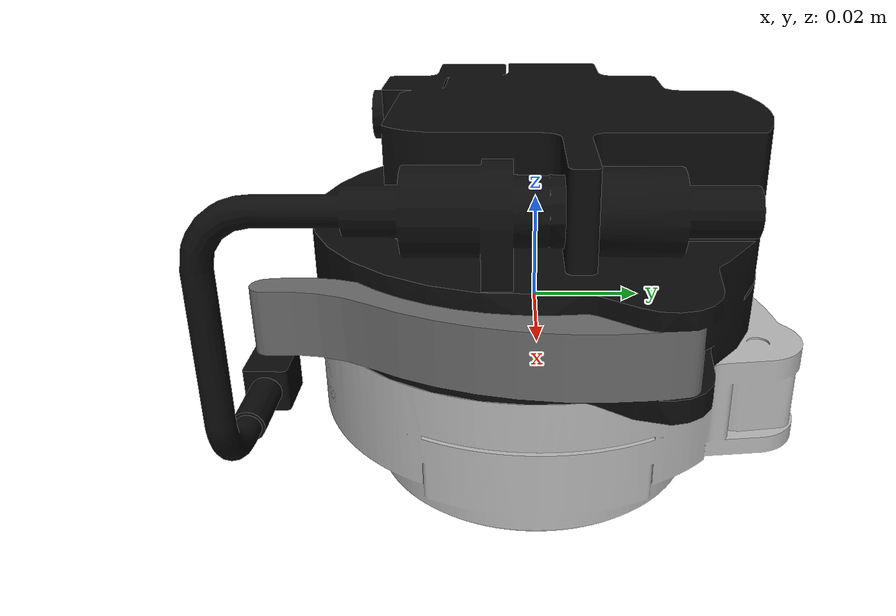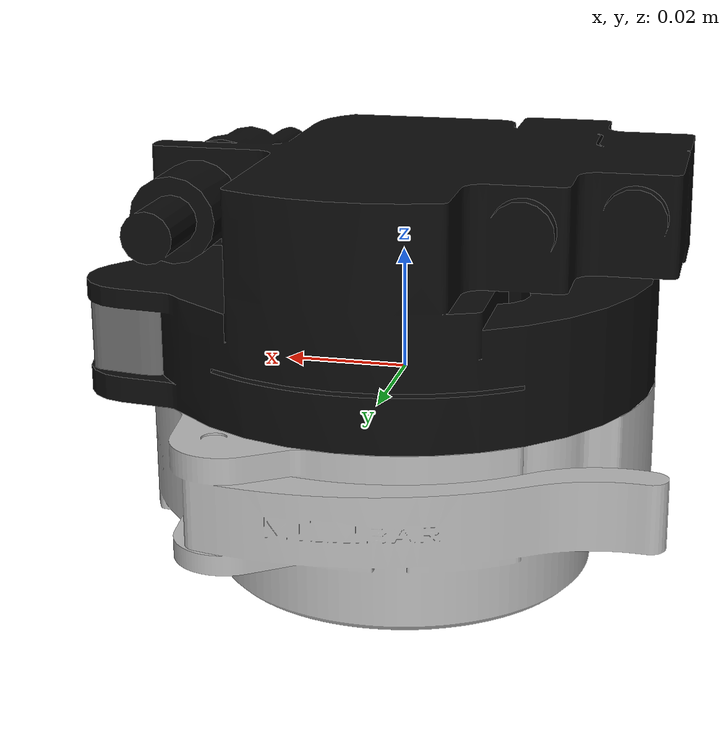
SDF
<?xml version="1.0" encoding="UTF-8"?>
<sdf version="1.6">
  <model name="millibar_toolchanger">
    <link name="base_link">
      <inertial>
        <mass>1</mass>
        <inertia>
          <ixx>1</ixx>
          <ixy>0</ixy>
          <ixz>0</ixz>
          <iyy>1</iyy>
          <iyz>0</iyz>
          <izz>1</izz>
        </inertia>
      </inertial>
      <visual name="visual1">
        <geometry>
          <mesh>
            <uri>millibar_toolchanger.dae</uri>
          </mesh>
        </geometry>
      </visual>
      <collision name="collision1">
        <pose>0 0 0 0 0 0</pose>
        <geometry>
          <mesh>
            <uri>millibar_toolchanger_c01.stl</uri>
          </mesh>
        </geometry>
      </collision>
    </link>
    <link name="tool_attach">
      <pose>0.0 0.0 0 0 0 0</pose>
      <visual name="visual2">
        <geometry>
          <mesh>
            <uri>millibar_toolchanger_ur3510.stl</uri>
          </mesh>
        </geometry>
      </visual>
      <collision name="collision2">
        <geometry>
          <mesh>
            <uri>millibar_toolchanger_ur3510.stl</uri>
          </mesh>
        </geometry>
      </collision>
    </link>
    <joint name="attach_joint" type="fixed">
      <parent>base_link</parent>
      <child>tool_attach</child>
      <pose>0.0 0.0 0.0 0 0 0 </pose>
    </joint>
  </model>
</sdf>
